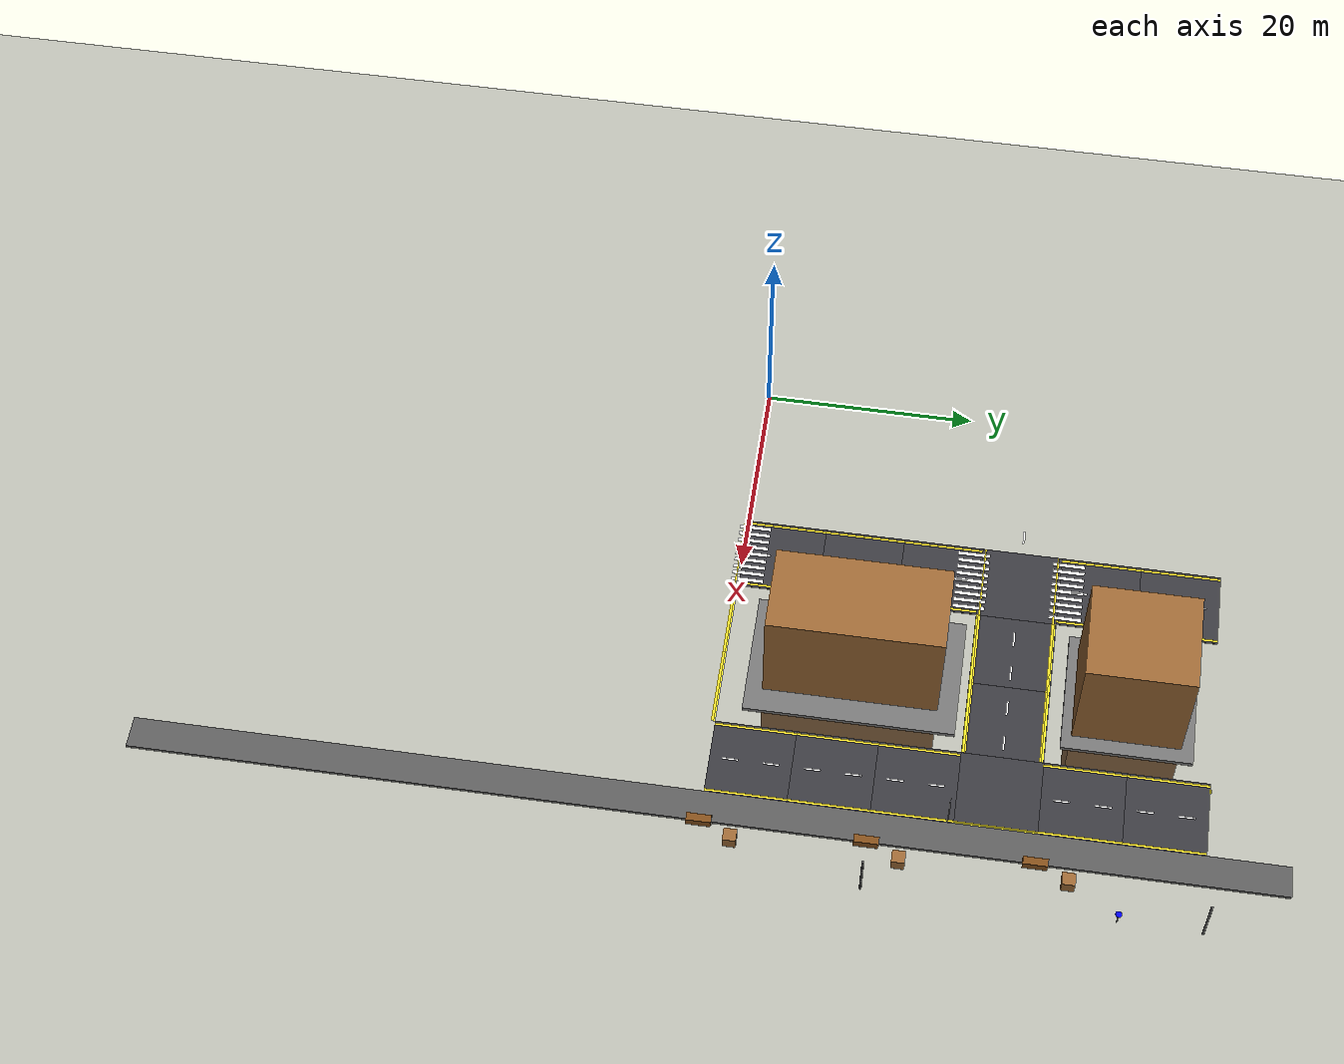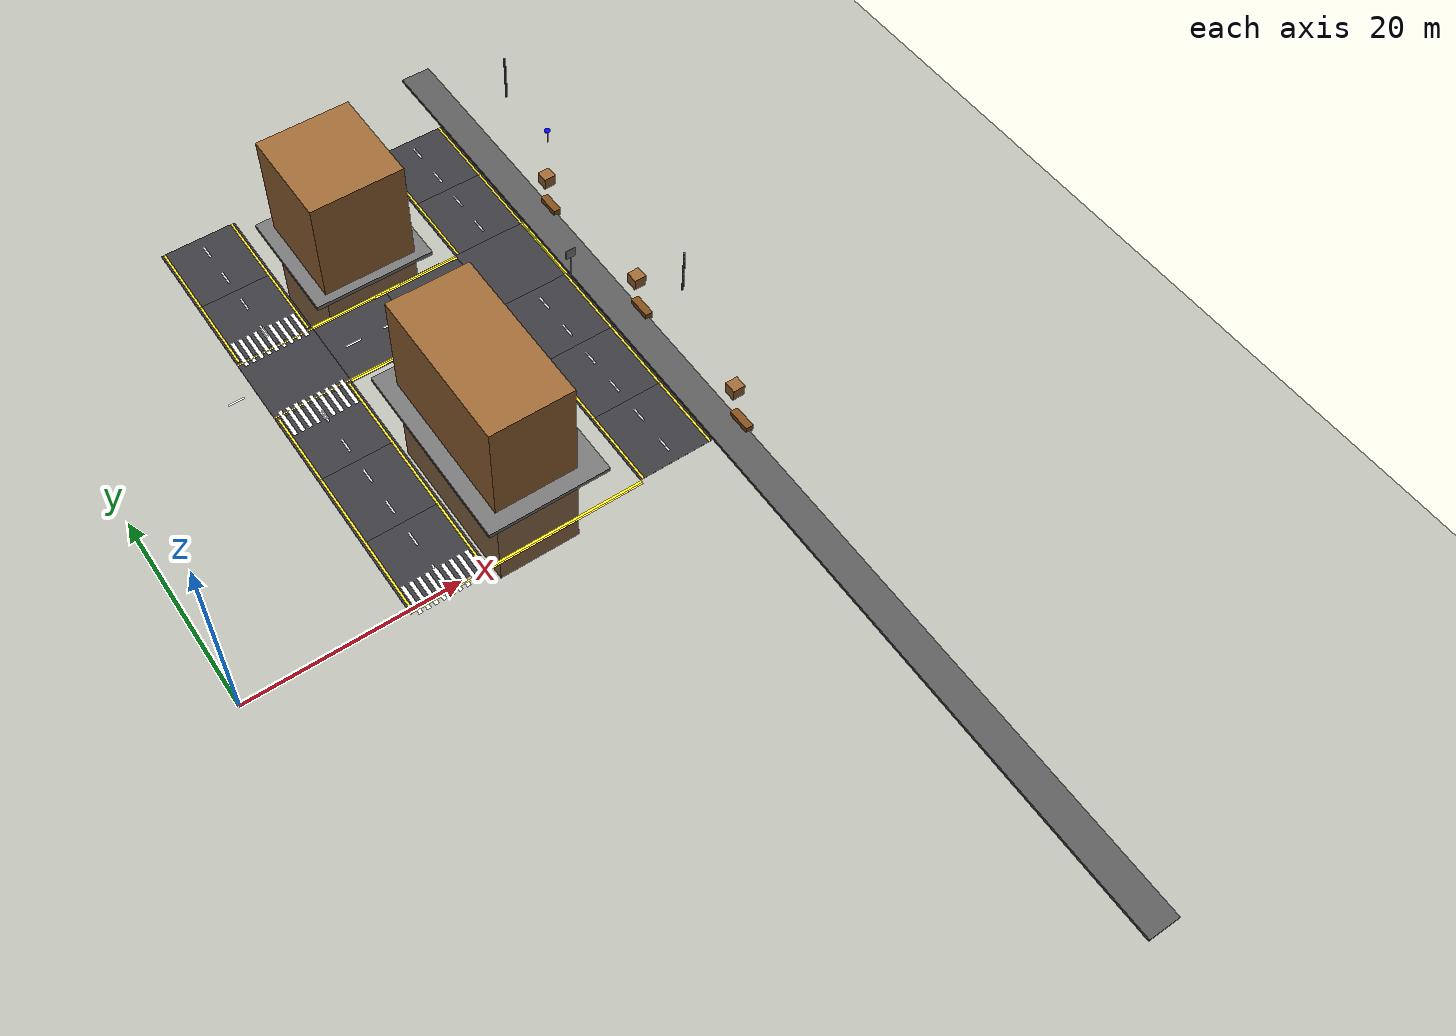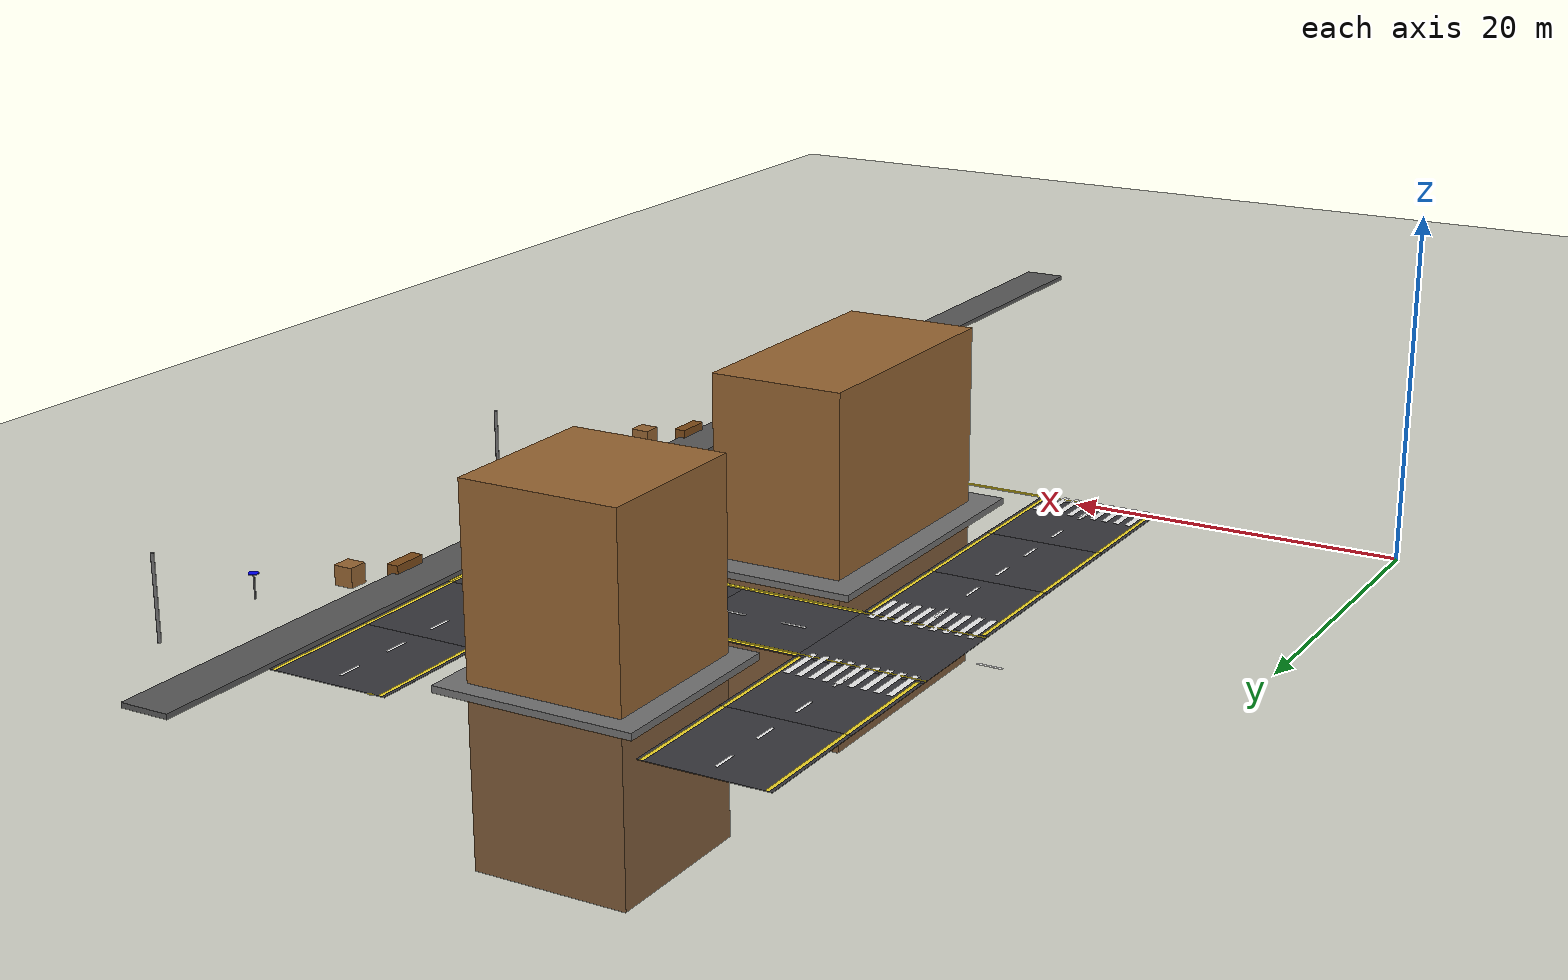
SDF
<sdf version="1.7">
 <world name="compact_city">
  <model name="ground_plane">
   <static>1</static>
   <pose>0 0 0.01 0 -0 0</pose>
   <link name="link">
    <collision name="collision">
     <geometry><plane><normal>0 0 1</normal><size>200 200</size></plane></geometry>
    </collision>
    <visual name="visual">
     <geometry><plane><normal>0 0 1</normal><size>200 200</size></plane></geometry>
     <material>
      <ambient>0.2 0.2 0.2 1</ambient>
      <diffuse>0.25 0.25 0.25 1</diffuse>
      <specular>0.1 0.1 0.1 1</specular>
     </material>
    </visual>
   </link>
  </model>
  <model name="road_tile_15">
   <static>1</static>
   <pose>18.75 41.25 0.015 0 -0 1.5708</pose>
   <link name="link">
    <collision name="collision"><geometry><box><size>7.5 7.5 0.03</size></box></geometry></collision>
    <visual name="visual">
     <geometry><box><size>7.5 7.5 0.03</size></box></geometry>
     <material>
      <ambient>0.18 0.18 0.2 1</ambient>
      <diffuse>0.22 0.22 0.24 1</diffuse>
      <specular>0.1 0.1 0.1 1</specular>
     </material>
    </visual>
   </link>
  </model>
  <model name="road_tile_16">
   <static>1</static>
   <pose>41.25 41.25 0.015 0 -0 1.5708</pose>
   <link name="link">
    <collision name="collision"><geometry><box><size>7.5 7.5 0.03</size></box></geometry></collision>
    <visual name="visual">
     <geometry><box><size>7.5 7.5 0.03</size></box></geometry>
     <material>
      <ambient>0.18 0.18 0.2 1</ambient>
      <diffuse>0.22 0.22 0.24 1</diffuse>
      <specular>0.1 0.1 0.1 1</specular>
     </material>
    </visual>
   </link>
  </model>
  <model name="road_tile_19">
   <static>1</static>
   <pose>18.75 33.75 0.015 0 -0 1.5708</pose>
   <link name="link">
    <collision name="collision"><geometry><box><size>7.5 7.5 0.03</size></box></geometry></collision>
    <visual name="visual">
     <geometry><box><size>7.5 7.5 0.03</size></box></geometry>
     <material>
      <ambient>0.18 0.18 0.2 1</ambient>
      <diffuse>0.22 0.22 0.24 1</diffuse>
      <specular>0.1 0.1 0.1 1</specular>
     </material>
    </visual>
   </link>
  </model>
  <model name="road_tile_20">
   <static>1</static>
   <pose>41.25 33.75 0.015 0 -0 1.5708</pose>
   <link name="link">
    <collision name="collision"><geometry><box><size>7.5 7.5 0.03</size></box></geometry></collision>
    <visual name="visual">
     <geometry><box><size>7.5 7.5 0.03</size></box></geometry>
     <material>
      <ambient>0.18 0.18 0.2 1</ambient>
      <diffuse>0.22 0.22 0.24 1</diffuse>
      <specular>0.1 0.1 0.1 1</specular>
     </material>
    </visual>
   </link>
  </model>
  <model name="road_tile_29">
   <static>1</static>
   <pose>18.75 26.25 0.015 0 -0 0</pose>
   <link name="link">
    <collision name="collision"><geometry><box><size>7.5 7.5 0.03</size></box></geometry></collision>
    <visual name="visual">
     <geometry><box><size>7.5 7.5 0.03</size></box></geometry>
     <material>
      <ambient>0.18 0.18 0.2 1</ambient>
      <diffuse>0.22 0.22 0.24 1</diffuse>
      <specular>0.1 0.1 0.1 1</specular>
     </material>
    </visual>
   </link>
  </model>
  <model name="road_tile_30">
   <static>1</static>
   <pose>26.25 26.25 0.015 0 -0 0</pose>
   <link name="link">
    <collision name="collision"><geometry><box><size>7.5 7.5 0.03</size></box></geometry></collision>
    <visual name="visual">
     <geometry><box><size>7.5 7.5 0.03</size></box></geometry>
     <material>
      <ambient>0.18 0.18 0.2 1</ambient>
      <diffuse>0.22 0.22 0.24 1</diffuse>
      <specular>0.1 0.1 0.1 1</specular>
     </material>
    </visual>
   </link>
  </model>
  <model name="road_tile_31">
   <static>1</static>
   <pose>33.75 26.25 0.015 0 -0 0</pose>
   <link name="link">
    <collision name="collision"><geometry><box><size>7.5 7.5 0.03</size></box></geometry></collision>
    <visual name="visual">
     <geometry><box><size>7.5 7.5 0.03</size></box></geometry>
     <material>
      <ambient>0.18 0.18 0.2 1</ambient>
      <diffuse>0.22 0.22 0.24 1</diffuse>
      <specular>0.1 0.1 0.1 1</specular>
     </material>
    </visual>
   </link>
  </model>
  <model name="road_tile_32">
   <static>1</static>
   <pose>41.25 26.25 0.015 0 -0 0</pose>
   <link name="link">
    <collision name="collision"><geometry><box><size>7.5 7.5 0.03</size></box></geometry></collision>
    <visual name="visual">
     <geometry><box><size>7.5 7.5 0.03</size></box></geometry>
     <material>
      <ambient>0.18 0.18 0.2 1</ambient>
      <diffuse>0.22 0.22 0.24 1</diffuse>
      <specular>0.1 0.1 0.1 1</specular>
     </material>
    </visual>
   </link>
  </model>
  <model name="road_tile_35">
   <static>1</static>
   <pose>18.75 18.75 0.015 0 -0 1.5708</pose>
   <link name="link">
    <collision name="collision"><geometry><box><size>7.5 7.5 0.03</size></box></geometry></collision>
    <visual name="visual">
     <geometry><box><size>7.5 7.5 0.03</size></box></geometry>
     <material>
      <ambient>0.18 0.18 0.2 1</ambient>
      <diffuse>0.22 0.22 0.24 1</diffuse>
      <specular>0.1 0.1 0.1 1</specular>
     </material>
    </visual>
   </link>
  </model>
  <model name="road_tile_36">
   <static>1</static>
   <pose>41.25 18.75 0.015 0 -0 1.5708</pose>
   <link name="link">
    <collision name="collision"><geometry><box><size>7.5 7.5 0.03</size></box></geometry></collision>
    <visual name="visual">
     <geometry><box><size>7.5 7.5 0.03</size></box></geometry>
     <material>
      <ambient>0.18 0.18 0.2 1</ambient>
      <diffuse>0.22 0.22 0.24 1</diffuse>
      <specular>0.1 0.1 0.1 1</specular>
     </material>
    </visual>
   </link>
  </model>
  <model name="road_tile_39">
   <static>1</static>
   <pose>18.75 11.25 0.015 0 -0 1.5708</pose>
   <link name="link">
    <collision name="collision"><geometry><box><size>7.5 7.5 0.03</size></box></geometry></collision>
    <visual name="visual">
     <geometry><box><size>7.5 7.5 0.03</size></box></geometry>
     <material>
      <ambient>0.18 0.18 0.2 1</ambient>
      <diffuse>0.22 0.22 0.24 1</diffuse>
      <specular>0.1 0.1 0.1 1</specular>
     </material>
    </visual>
   </link>
  </model>
  <model name="road_tile_40">
   <static>1</static>
   <pose>41.25 11.25 0.015 0 -0 1.5708</pose>
   <link name="link">
    <collision name="collision"><geometry><box><size>7.5 7.5 0.03</size></box></geometry></collision>
    <visual name="visual">
     <geometry><box><size>7.5 7.5 0.03</size></box></geometry>
     <material>
      <ambient>0.18 0.18 0.2 1</ambient>
      <diffuse>0.22 0.22 0.24 1</diffuse>
      <specular>0.1 0.1 0.1 1</specular>
     </material>
    </visual>
   </link>
  </model>
  <model name="road_tile_43">
   <static>1</static>
   <pose>18.75 3.75 0.015 0 -0 1.5708</pose>
   <link name="link">
    <collision name="collision"><geometry><box><size>7.5 7.5 0.03</size></box></geometry></collision>
    <visual name="visual">
     <geometry><box><size>7.5 7.5 0.03</size></box></geometry>
     <material>
      <ambient>0.18 0.18 0.2 1</ambient>
      <diffuse>0.22 0.22 0.24 1</diffuse>
      <specular>0.1 0.1 0.1 1</specular>
     </material>
    </visual>
   </link>
  </model>
  <model name="road_tile_44">
   <static>1</static>
   <pose>41.25 3.75 0.015 0 -0 1.5708</pose>
   <link name="link">
    <collision name="collision"><geometry><box><size>7.5 7.5 0.03</size></box></geometry></collision>
    <visual name="visual">
     <geometry><box><size>7.5 7.5 0.03</size></box></geometry>
     <material>
      <ambient>0.18 0.18 0.2 1</ambient>
      <diffuse>0.22 0.22 0.24 1</diffuse>
      <specular>0.1 0.1 0.1 1</specular>
     </material>
    </visual>
   </link>
  </model>
  <model name="sidewalk_east">
   <static>1</static>
   <pose>46.5 0 0.15 0 -0 0</pose>
   <link name="link">
    <collision name="collision"><geometry><box><size>3 105 0.3</size></box></geometry></collision>
    <visual name="visual">
     <geometry><box><size>3 105 0.3</size></box></geometry>
     <material>
      <ambient>0.3 0.3 0.3 1</ambient>
      <diffuse>0.35 0.35 0.35 1</diffuse>
      <specular>0.1 0.1 0.1 1</specular>
     </material>
    </visual>
   </link>
  </model>
  <model name="sidewalk_area_top_right">
   <static>1</static>
   <pose>29.8659 37.3103 0.2 0 -0 0</pose>
   <link name="link">
    <collision name="collision"><geometry><box><size>12 12 0.4</size></box></geometry></collision>
    <visual name="visual">
     <geometry><box><size>12 12 0.4</size></box></geometry>
     <material>
      <ambient>0.4 0.4 0.4 1</ambient>
      <diffuse>0.45 0.45 0.45 1</diffuse>
      <specular>0.2 0.2 0.2 1</specular>
     </material>
    </visual>
   </link>
  </model>
  <model name="sidewalk_area_mid_right">
   <static>1</static>
   <pose>29.9619 11.969 0.2 0 -0 0</pose>
   <link name="link">
    <collision name="collision"><geometry><box><size>12 19.5 0.4</size></box></geometry></collision>
    <visual name="visual">
     <geometry><box><size>12 19.5 0.4</size></box></geometry>
     <material>
      <ambient>0.4 0.4 0.4 1</ambient>
      <diffuse>0.45 0.45 0.45 1</diffuse>
      <specular>0.2 0.2 0.2 1</specular>
     </material>
    </visual>
   </link>
  </model>
  <model name="el_219">
   <static>1</static>
   <pose>15.3 3.75 0.038 0 -0 1.5708</pose>
   <link name="link">
    <visual name="v">
     <geometry><box><size>7.5 0.225 0.002</size></box></geometry>
     <material><ambient>0.9 0.8 0.1 1</ambient><diffuse>0.95 0.85 0.15 1</diffuse></material>
    </visual>
   </link>
  </model>
  <model name="el_220">
   <static>1</static>
   <pose>22.2 3.75 0.038 0 -0 1.5708</pose>
   <link name="link">
    <visual name="v">
     <geometry><box><size>7.5 0.225 0.002</size></box></geometry>
     <material><ambient>0.9 0.8 0.1 1</ambient><diffuse>0.95 0.85 0.15 1</diffuse></material>
    </visual>
   </link>
  </model>
  <model name="el_221">
   <static>1</static>
   <pose>15.3 11.25 0.038 0 -0 1.5708</pose>
   <link name="link">
    <visual name="v">
     <geometry><box><size>7.5 0.225 0.002</size></box></geometry>
     <material><ambient>0.9 0.8 0.1 1</ambient><diffuse>0.95 0.85 0.15 1</diffuse></material>
    </visual>
   </link>
  </model>
  <model name="el_222">
   <static>1</static>
   <pose>22.2 11.25 0.038 0 -0 1.5708</pose>
   <link name="link">
    <visual name="v">
     <geometry><box><size>7.5 0.225 0.002</size></box></geometry>
     <material><ambient>0.9 0.8 0.1 1</ambient><diffuse>0.95 0.85 0.15 1</diffuse></material>
    </visual>
   </link>
  </model>
  <model name="el_223">
   <static>1</static>
   <pose>15.3 18.75 0.038 0 -0 1.5708</pose>
   <link name="link">
    <visual name="v">
     <geometry><box><size>7.5 0.225 0.002</size></box></geometry>
     <material><ambient>0.9 0.8 0.1 1</ambient><diffuse>0.95 0.85 0.15 1</diffuse></material>
    </visual>
   </link>
  </model>
  <model name="el_224">
   <static>1</static>
   <pose>22.2 18.75 0.038 0 -0 1.5708</pose>
   <link name="link">
    <visual name="v">
     <geometry><box><size>7.5 0.225 0.002</size></box></geometry>
     <material><ambient>0.9 0.8 0.1 1</ambient><diffuse>0.95 0.85 0.15 1</diffuse></material>
    </visual>
   </link>
  </model>
  <model name="el_225">
   <static>1</static>
   <pose>15.3 33.75 0.038 0 -0 1.5708</pose>
   <link name="link">
    <visual name="v">
     <geometry><box><size>7.5 0.225 0.002</size></box></geometry>
     <material><ambient>0.9 0.8 0.1 1</ambient><diffuse>0.95 0.85 0.15 1</diffuse></material>
    </visual>
   </link>
  </model>
  <model name="el_226">
   <static>1</static>
   <pose>22.2 33.75 0.038 0 -0 1.5708</pose>
   <link name="link">
    <visual name="v">
     <geometry><box><size>7.5 0.225 0.002</size></box></geometry>
     <material><ambient>0.9 0.8 0.1 1</ambient><diffuse>0.95 0.85 0.15 1</diffuse></material>
    </visual>
   </link>
  </model>
  <model name="el_227">
   <static>1</static>
   <pose>15.3 41.25 0.038 0 -0 1.5708</pose>
   <link name="link">
    <visual name="v">
     <geometry><box><size>7.5 0.225 0.002</size></box></geometry>
     <material><ambient>0.9 0.8 0.1 1</ambient><diffuse>0.95 0.85 0.15 1</diffuse></material>
    </visual>
   </link>
  </model>
  <model name="el_228">
   <static>1</static>
   <pose>22.2 41.25 0.038 0 -0 1.5708</pose>
   <link name="link">
    <visual name="v">
     <geometry><box><size>7.5 0.225 0.002</size></box></geometry>
     <material><ambient>0.9 0.8 0.1 1</ambient><diffuse>0.95 0.85 0.15 1</diffuse></material>
    </visual>
   </link>
  </model>
  <model name="el_232">
   <static>1</static>
   <pose>26.25 -0.3 0.038 0 -0 0</pose>
   <link name="link">
    <visual name="v">
     <geometry><box><size>7.5 0.225 0.002</size></box></geometry>
     <material><ambient>0.9 0.8 0.1 1</ambient><diffuse>0.95 0.85 0.15 1</diffuse></material>
    </visual>
   </link>
  </model>
  <model name="el_233">
   <static>1</static>
   <pose>26.25 22.8 0.038 0 -0 0</pose>
   <link name="link">
    <visual name="v">
     <geometry><box><size>7.5 0.225 0.002</size></box></geometry>
     <material><ambient>0.9 0.8 0.1 1</ambient><diffuse>0.95 0.85 0.15 1</diffuse></material>
    </visual>
   </link>
  </model>
  <model name="el_234">
   <static>1</static>
   <pose>26.25 29.7 0.038 0 -0 0</pose>
   <link name="link">
    <visual name="v">
     <geometry><box><size>7.5 0.225 0.002</size></box></geometry>
     <material><ambient>0.9 0.8 0.1 1</ambient><diffuse>0.95 0.85 0.15 1</diffuse></material>
    </visual>
   </link>
  </model>
  <model name="el_240">
   <static>1</static>
   <pose>33.75 -0.3 0.038 0 -0 0</pose>
   <link name="link">
    <visual name="v">
     <geometry><box><size>7.5 0.225 0.002</size></box></geometry>
     <material><ambient>0.9 0.8 0.1 1</ambient><diffuse>0.95 0.85 0.15 1</diffuse></material>
    </visual>
   </link>
  </model>
  <model name="el_241">
   <static>1</static>
   <pose>33.75 22.8 0.038 0 -0 0</pose>
   <link name="link">
    <visual name="v">
     <geometry><box><size>7.5 0.225 0.002</size></box></geometry>
     <material><ambient>0.9 0.8 0.1 1</ambient><diffuse>0.95 0.85 0.15 1</diffuse></material>
    </visual>
   </link>
  </model>
  <model name="el_242">
   <static>1</static>
   <pose>33.75 29.7 0.038 0 -0 0</pose>
   <link name="link">
    <visual name="v">
     <geometry><box><size>7.5 0.225 0.002</size></box></geometry>
     <material><ambient>0.9 0.8 0.1 1</ambient><diffuse>0.95 0.85 0.15 1</diffuse></material>
    </visual>
   </link>
  </model>
  <model name="el_251">
   <static>1</static>
   <pose>37.8 3.75 0.038 0 -0 1.5708</pose>
   <link name="link">
    <visual name="v">
     <geometry><box><size>7.5 0.225 0.002</size></box></geometry>
     <material><ambient>0.9 0.8 0.1 1</ambient><diffuse>0.95 0.85 0.15 1</diffuse></material>
    </visual>
   </link>
  </model>
  <model name="el_252">
   <static>1</static>
   <pose>44.7 3.75 0.038 0 -0 1.5708</pose>
   <link name="link">
    <visual name="v">
     <geometry><box><size>7.5 0.225 0.002</size></box></geometry>
     <material><ambient>0.9 0.8 0.1 1</ambient><diffuse>0.95 0.85 0.15 1</diffuse></material>
    </visual>
   </link>
  </model>
  <model name="el_253">
   <static>1</static>
   <pose>37.8 11.25 0.038 0 -0 1.5708</pose>
   <link name="link">
    <visual name="v">
     <geometry><box><size>7.5 0.225 0.002</size></box></geometry>
     <material><ambient>0.9 0.8 0.1 1</ambient><diffuse>0.95 0.85 0.15 1</diffuse></material>
    </visual>
   </link>
  </model>
  <model name="el_254">
   <static>1</static>
   <pose>44.7 11.25 0.038 0 -0 1.5708</pose>
   <link name="link">
    <visual name="v">
     <geometry><box><size>7.5 0.225 0.002</size></box></geometry>
     <material><ambient>0.9 0.8 0.1 1</ambient><diffuse>0.95 0.85 0.15 1</diffuse></material>
    </visual>
   </link>
  </model>
  <model name="el_255">
   <static>1</static>
   <pose>37.8 18.75 0.038 0 -0 1.5708</pose>
   <link name="link">
    <visual name="v">
     <geometry><box><size>7.5 0.225 0.002</size></box></geometry>
     <material><ambient>0.9 0.8 0.1 1</ambient><diffuse>0.95 0.85 0.15 1</diffuse></material>
    </visual>
   </link>
  </model>
  <model name="el_256">
   <static>1</static>
   <pose>44.7 18.75 0.038 0 -0 1.5708</pose>
   <link name="link">
    <visual name="v">
     <geometry><box><size>7.5 0.225 0.002</size></box></geometry>
     <material><ambient>0.9 0.8 0.1 1</ambient><diffuse>0.95 0.85 0.15 1</diffuse></material>
    </visual>
   </link>
  </model>
  <model name="el_257">
   <static>1</static>
   <pose>37.8 33.75 0.038 0 -0 1.5708</pose>
   <link name="link">
    <visual name="v">
     <geometry><box><size>7.5 0.225 0.002</size></box></geometry>
     <material><ambient>0.9 0.8 0.1 1</ambient><diffuse>0.95 0.85 0.15 1</diffuse></material>
    </visual>
   </link>
  </model>
  <model name="el_258">
   <static>1</static>
   <pose>44.7 33.75 0.038 0 -0 1.5708</pose>
   <link name="link">
    <visual name="v">
     <geometry><box><size>7.5 0.225 0.002</size></box></geometry>
     <material><ambient>0.9 0.8 0.1 1</ambient><diffuse>0.95 0.85 0.15 1</diffuse></material>
    </visual>
   </link>
  </model>
  <model name="el_259">
   <static>1</static>
   <pose>37.8 41.25 0.038 0 -0 1.5708</pose>
   <link name="link">
    <visual name="v">
     <geometry><box><size>7.5 0.225 0.002</size></box></geometry>
     <material><ambient>0.9 0.8 0.1 1</ambient><diffuse>0.95 0.85 0.15 1</diffuse></material>
    </visual>
   </link>
  </model>
  <model name="el_260">
   <static>1</static>
   <pose>44.7 41.25 0.038 0 -0 1.5708</pose>
   <link name="link">
    <visual name="v">
     <geometry><box><size>7.5 0.225 0.002</size></box></geometry>
     <material><ambient>0.9 0.8 0.1 1</ambient><diffuse>0.95 0.85 0.15 1</diffuse></material>
    </visual>
   </link>
  </model>
  <model name="ld_39">
   <static>1</static>
   <pose>18.75 1.875 0.038 0 -0 1.5708</pose>
   <link name="link">
    <visual name="v">
     <geometry><box><size>1.5 0.18 0.002</size></box></geometry>
     <material><ambient>1 1 1 1</ambient><diffuse>0.95 0.95 0.95 1</diffuse></material>
    </visual>
   </link>
  </model>
  <model name="ld_40">
   <static>1</static>
   <pose>18.75 5.625 0.038 0 -0 1.5708</pose>
   <link name="link">
    <visual name="v">
     <geometry><box><size>1.5 0.18 0.002</size></box></geometry>
     <material><ambient>1 1 1 1</ambient><diffuse>0.95 0.95 0.95 1</diffuse></material>
    </visual>
   </link>
  </model>
  <model name="ld_41">
   <static>1</static>
   <pose>18.75 9.375 0.038 0 -0 1.5708</pose>
   <link name="link">
    <visual name="v">
     <geometry><box><size>1.5 0.18 0.002</size></box></geometry>
     <material><ambient>1 1 1 1</ambient><diffuse>0.95 0.95 0.95 1</diffuse></material>
    </visual>
   </link>
  </model>
  <model name="ld_42">
   <static>1</static>
   <pose>18.75 13.125 0.038 0 -0 1.5708</pose>
   <link name="link">
    <visual name="v">
     <geometry><box><size>1.5 0.18 0.002</size></box></geometry>
     <material><ambient>1 1 1 1</ambient><diffuse>0.95 0.95 0.95 1</diffuse></material>
    </visual>
   </link>
  </model>
  <model name="ld_43">
   <static>1</static>
   <pose>18.75 16.875 0.038 0 -0 1.5708</pose>
   <link name="link">
    <visual name="v">
     <geometry><box><size>1.5 0.18 0.002</size></box></geometry>
     <material><ambient>1 1 1 1</ambient><diffuse>0.95 0.95 0.95 1</diffuse></material>
    </visual>
   </link>
  </model>
  <model name="ld_44">
   <static>1</static>
   <pose>18.75 20.625 0.038 0 -0 1.5708</pose>
   <link name="link">
    <visual name="v">
     <geometry><box><size>1.5 0.18 0.002</size></box></geometry>
     <material><ambient>1 1 1 1</ambient><diffuse>0.95 0.95 0.95 1</diffuse></material>
    </visual>
   </link>
  </model>
  <model name="ld_45">
   <static>1</static>
   <pose>18.75 31.875 0.038 0 -0 1.5708</pose>
   <link name="link">
    <visual name="v">
     <geometry><box><size>1.5 0.18 0.002</size></box></geometry>
     <material><ambient>1 1 1 1</ambient><diffuse>0.95 0.95 0.95 1</diffuse></material>
    </visual>
   </link>
  </model>
  <model name="ld_46">
   <static>1</static>
   <pose>18.75 35.625 0.038 0 -0 1.5708</pose>
   <link name="link">
    <visual name="v">
     <geometry><box><size>1.5 0.18 0.002</size></box></geometry>
     <material><ambient>1 1 1 1</ambient><diffuse>0.95 0.95 0.95 1</diffuse></material>
    </visual>
   </link>
  </model>
  <model name="ld_47">
   <static>1</static>
   <pose>18.75 39.375 0.038 0 -0 1.5708</pose>
   <link name="link">
    <visual name="v">
     <geometry><box><size>1.5 0.18 0.002</size></box></geometry>
     <material><ambient>1 1 1 1</ambient><diffuse>0.95 0.95 0.95 1</diffuse></material>
    </visual>
   </link>
  </model>
  <model name="ld_48">
   <static>1</static>
   <pose>18.75 43.125 0.038 0 -0 1.5708</pose>
   <link name="link">
    <visual name="v">
     <geometry><box><size>1.5 0.18 0.002</size></box></geometry>
     <material><ambient>1 1 1 1</ambient><diffuse>0.95 0.95 0.95 1</diffuse></material>
    </visual>
   </link>
  </model>
  <model name="ld_55">
   <static>1</static>
   <pose>41.25 1.875 0.038 0 -0 1.5708</pose>
   <link name="link">
    <visual name="v">
     <geometry><box><size>1.5 0.18 0.002</size></box></geometry>
     <material><ambient>1 1 1 1</ambient><diffuse>0.95 0.95 0.95 1</diffuse></material>
    </visual>
   </link>
  </model>
  <model name="ld_56">
   <static>1</static>
   <pose>41.25 5.625 0.038 0 -0 1.5708</pose>
   <link name="link">
    <visual name="v">
     <geometry><box><size>1.5 0.18 0.002</size></box></geometry>
     <material><ambient>1 1 1 1</ambient><diffuse>0.95 0.95 0.95 1</diffuse></material>
    </visual>
   </link>
  </model>
  <model name="ld_57">
   <static>1</static>
   <pose>41.25 9.375 0.038 0 -0 1.5708</pose>
   <link name="link">
    <visual name="v">
     <geometry><box><size>1.5 0.18 0.002</size></box></geometry>
     <material><ambient>1 1 1 1</ambient><diffuse>0.95 0.95 0.95 1</diffuse></material>
    </visual>
   </link>
  </model>
  <model name="ld_58">
   <static>1</static>
   <pose>41.25 13.125 0.038 0 -0 1.5708</pose>
   <link name="link">
    <visual name="v">
     <geometry><box><size>1.5 0.18 0.002</size></box></geometry>
     <material><ambient>1 1 1 1</ambient><diffuse>0.95 0.95 0.95 1</diffuse></material>
    </visual>
   </link>
  </model>
  <model name="ld_59">
   <static>1</static>
   <pose>41.25 16.875 0.038 0 -0 1.5708</pose>
   <link name="link">
    <visual name="v">
     <geometry><box><size>1.5 0.18 0.002</size></box></geometry>
     <material><ambient>1 1 1 1</ambient><diffuse>0.95 0.95 0.95 1</diffuse></material>
    </visual>
   </link>
  </model>
  <model name="ld_60">
   <static>1</static>
   <pose>41.25 20.625 0.038 0 -0 1.5708</pose>
   <link name="link">
    <visual name="v">
     <geometry><box><size>1.5 0.18 0.002</size></box></geometry>
     <material><ambient>1 1 1 1</ambient><diffuse>0.95 0.95 0.95 1</diffuse></material>
    </visual>
   </link>
  </model>
  <model name="ld_61">
   <static>1</static>
   <pose>41.25 31.875 0.038 0 -0 1.5708</pose>
   <link name="link">
    <visual name="v">
     <geometry><box><size>1.5 0.18 0.002</size></box></geometry>
     <material><ambient>1 1 1 1</ambient><diffuse>0.95 0.95 0.95 1</diffuse></material>
    </visual>
   </link>
  </model>
  <model name="ld_62">
   <static>1</static>
   <pose>41.25 35.625 0.038 0 -0 1.5708</pose>
   <link name="link">
    <visual name="v">
     <geometry><box><size>1.5 0.18 0.002</size></box></geometry>
     <material><ambient>1 1 1 1</ambient><diffuse>0.95 0.95 0.95 1</diffuse></material>
    </visual>
   </link>
  </model>
  <model name="ld_63">
   <static>1</static>
   <pose>41.25 39.375 0.038 0 -0 1.5708</pose>
   <link name="link">
    <visual name="v">
     <geometry><box><size>1.5 0.18 0.002</size></box></geometry>
     <material><ambient>1 1 1 1</ambient><diffuse>0.95 0.95 0.95 1</diffuse></material>
    </visual>
   </link>
  </model>
  <model name="ld_64">
   <static>1</static>
   <pose>41.25 43.125 0.038 0 -0 1.5708</pose>
   <link name="link">
    <visual name="v">
     <geometry><box><size>1.5 0.18 0.002</size></box></geometry>
     <material><ambient>1 1 1 1</ambient><diffuse>0.95 0.95 0.95 1</diffuse></material>
    </visual>
   </link>
  </model>
  <model name="ld_96">
   <static>1</static>
   <pose>13.125 26.25 0.038 0 -0 0</pose>
   <link name="link">
    <visual name="v">
     <geometry><box><size>1.5 0.18 0.002</size></box></geometry>
     <material><ambient>1 1 1 1</ambient><diffuse>0.95 0.95 0.95 1</diffuse></material>
    </visual>
   </link>
  </model>
  <model name="ld_97">
   <static>1</static>
   <pose>24.75 26.25 0.038 0 -0 0</pose>
   <link name="link">
    <visual name="v">
     <geometry><box><size>1.5 0.18 0.002</size></box></geometry>
     <material><ambient>1 1 1 1</ambient><diffuse>0.95 0.95 0.95 1</diffuse></material>
    </visual>
   </link>
  </model>
  <model name="ld_98">
   <static>1</static>
   <pose>28.5 26.25 0.038 0 -0 0</pose>
   <link name="link">
    <visual name="v">
     <geometry><box><size>1.5 0.18 0.002</size></box></geometry>
     <material><ambient>1 1 1 1</ambient><diffuse>0.95 0.95 0.95 1</diffuse></material>
    </visual>
   </link>
  </model>
  <model name="ld_99">
   <static>1</static>
   <pose>32.25 26.25 0.038 0 -0 0</pose>
   <link name="link">
    <visual name="v">
     <geometry><box><size>1.5 0.18 0.002</size></box></geometry>
     <material><ambient>1 1 1 1</ambient><diffuse>0.95 0.95 0.95 1</diffuse></material>
    </visual>
   </link>
  </model>
  <model name="ld_100">
   <static>1</static>
   <pose>36 26.25 0.038 0 -0 0</pose>
   <link name="link">
    <visual name="v">
     <geometry><box><size>1.5 0.18 0.002</size></box></geometry>
     <material><ambient>1 1 1 1</ambient><diffuse>0.95 0.95 0.95 1</diffuse></material>
    </visual>
   </link>
  </model>
  <model name="ie_320">
   <static>1</static>
   <pose>18.75 -0.3 0.038 0 -0 0</pose>
   <link name="link">
    <visual name="v">
     <geometry><box><size>7.5 0.15 0.002</size></box></geometry>
     <material><ambient>0.9 0.8 0.1 1</ambient><diffuse>0.95 0.85 0.15 1</diffuse></material>
    </visual>
   </link>
  </model>
  <model name="ie_328">
   <static>1</static>
   <pose>18.75 22.8 0.038 0 -0 0</pose>
   <link name="link">
    <visual name="v">
     <geometry><box><size>7.5 0.15 0.002</size></box></geometry>
     <material><ambient>0.9 0.8 0.1 1</ambient><diffuse>0.95 0.85 0.15 1</diffuse></material>
    </visual>
   </link>
  </model>
  <model name="ie_329">
   <static>1</static>
   <pose>18.75 29.7 0.038 0 -0 0</pose>
   <link name="link">
    <visual name="v">
     <geometry><box><size>7.5 0.15 0.002</size></box></geometry>
     <material><ambient>0.9 0.8 0.1 1</ambient><diffuse>0.95 0.85 0.15 1</diffuse></material>
    </visual>
   </link>
  </model>
  <model name="ie_350">
   <static>1</static>
   <pose>44.7 26.25 0.038 0 -0 1.5708</pose>
   <link name="link">
    <visual name="v">
     <geometry><box><size>7.5 0.15 0.002</size></box></geometry>
     <material><ambient>0.9 0.8 0.1 1</ambient><diffuse>0.95 0.85 0.15 1</diffuse></material>
    </visual>
   </link>
  </model>
  <model name="ai_450">
   <static>1</static>
   <pose>38.2495 45.0246 0.038 0 -0 1.6035</pose>
   <link name="link">
    <visual name="v">
     <geometry><box><size>0.06 0.225 0.002</size></box></geometry>
     <material><ambient>0.9 0.8 0.1 1</ambient><diffuse>0.95 0.85 0.15 1</diffuse></material>
    </visual>
   </link>
  </model>
  <model name="ai_451">
   <static>1</static>
   <pose>38.2464 45.0735 0.038 0 -0 1.669</pose>
   <link name="link">
    <visual name="v">
     <geometry><box><size>0.06 0.225 0.002</size></box></geometry>
     <material><ambient>0.9 0.8 0.1 1</ambient><diffuse>0.95 0.85 0.15 1</diffuse></material>
    </visual>
   </link>
  </model>
  <model name="ai_452">
   <static>1</static>
   <pose>38.24 45.1221 0.038 0 -0 1.7344</pose>
   <link name="link">
    <visual name="v">
     <geometry><box><size>0.06 0.225 0.002</size></box></geometry>
     <material><ambient>0.9 0.8 0.1 1</ambient><diffuse>0.95 0.85 0.15 1</diffuse></material>
    </visual>
   </link>
  </model>
  <model name="yolo_traffic_sign_no_entry_east_vertical">
   <static>1</static>
   <pose>44.9709 21.94 0 0 -0 -3.14159</pose>
   <link name="link">
    <collision name="pole_collision">
     <pose>0 0 1.35 0 -0 0</pose>
     <geometry><cylinder><radius>0.045</radius><length>2.7</length></cylinder></geometry>
    </collision>
    <visual name="pole_visual">
     <pose>0 0 1.35 0 -0 0</pose>
     <geometry><cylinder><radius>0.045</radius><length>2.7</length></cylinder></geometry>
     <material><ambient>0.45 0.45 0.45 1</ambient><diffuse>0.55 0.55 0.55 1</diffuse></material>
    </visual>
    <collision name="panel_collision">
     <pose>0 0 3.225 0 -0 0</pose>
     <geometry><box><size>1.05 0.045 1.05</size></box></geometry>
    </collision>
    <visual name="panel_back_visual">
     <pose>0 0 3.225 0 -0 0</pose>
     <geometry><box><size>1.05 0.045 1.05</size></box></geometry>
     <material><ambient>0.42 0.42 0.42 1</ambient><diffuse>0.5 0.5 0.5 1</diffuse></material>
    </visual>
    <visual name="panel_front_visual">
     <pose>0 -0.026 3.225 0 -0 0</pose>
     <geometry><box><size>1.05 0.006 1.05</size></box></geometry>
     <material>
      <script>
       <uri>file:///home/ranim/autoCar_ws/models/traffic_sign_assets/materials/scripts</uri>
       <uri>file:///home/ranim/autoCar_ws/models/traffic_sign_assets/materials/textures</uri>
       <name>TrafficSigns/NoEntry</name>
      </script>
     </material>
    </visual>
   </link>
  </model>
  <model name="bench_8">
   <static>1</static>
   <pose>48 30 0.4 0 0 -1.57</pose>
   <link name="link">
    <collision name="collision"><geometry><box><size>2.25 0.75 0.8</size></box></geometry></collision>
    <visual name="visual">
     <geometry><box><size>2.25 0.75 0.8</size></box></geometry>
     <material><ambient>0.5 0.3 0.1 1</ambient><diffuse>0.5 0.3 0.1 1</diffuse></material>
    </visual>
   </link>
  </model>
  <model name="bench_9">
   <static>1</static>
   <pose>48 15 0.4 0 0 -1.57</pose>
   <link name="link">
    <collision name="collision"><geometry><box><size>2.25 0.75 0.8</size></box></geometry></collision>
    <visual name="visual">
     <geometry><box><size>2.25 0.75 0.8</size></box></geometry>
     <material><ambient>0.5 0.3 0.1 1</ambient><diffuse>0.5 0.3 0.1 1</diffuse></material>
    </visual>
   </link>
  </model>
  <model name="bench_10">
   <static>1</static>
   <pose>48 0 0.4 0 0 -1.57</pose>
   <link name="link">
    <collision name="collision"><geometry><box><size>2.25 0.75 0.8</size></box></geometry></collision>
    <visual name="visual">
     <geometry><box><size>2.25 0.75 0.8</size></box></geometry>
     <material><ambient>0.5 0.3 0.1 1</ambient><diffuse>0.5 0.3 0.1 1</diffuse></material>
    </visual>
   </link>
  </model>
  <model name="sign_7">
   <static>1</static>
   <pose>52.5 37.5 1.5 0 0 -1.57</pose>
   <link name="link">
    <collision name="collision">
     <geometry><cylinder><radius>0.3</radius><length>0.05</length></cylinder></geometry>
    </collision>
    <visual name="visual">
     <geometry><cylinder><radius>0.3</radius><length>0.05</length></cylinder></geometry>
     <material><ambient>0 0 1 1</ambient><diffuse>0 0 1 1</diffuse></material>
    </visual>
    <collision name="pole_col">
     <pose>0 0 -0.75 0 -0 0</pose>
     <geometry><cylinder><radius>0.05</radius><length>1.5</length></cylinder></geometry>
    </collision>
    <visual name="pole">
     <pose>0 0 -0.75 0 -0 0</pose>
     <geometry><cylinder><radius>0.05</radius><length>1.5</length></cylinder></geometry>
     <material><ambient>0.5 0.5 0.5 1</ambient><diffuse>0.5 0.5 0.5 1</diffuse></material>
    </visual>
   </link>
  </model>
  <model name="pole_8">
   <static>1</static>
   <pose>52.5 45 2.5 0 -0 0</pose>
   <link name="link">
    <collision name="collision">
     <geometry><cylinder><radius>0.1</radius><length>5</length></cylinder></geometry>
    </collision>
    <visual name="visual">
     <geometry><cylinder><radius>0.1</radius><length>5</length></cylinder></geometry>
     <material><ambient>0.3 0.3 0.3 1</ambient><diffuse>0.4 0.4 0.4 1</diffuse></material>
    </visual>
   </link>
  </model>
  <model name="pole_9">
   <static>1</static>
   <pose>52.5 15 2.5 0 -0 0</pose>
   <link name="link">
    <collision name="collision">
     <geometry><cylinder><radius>0.1</radius><length>5</length></cylinder></geometry>
    </collision>
    <visual name="visual">
     <geometry><cylinder><radius>0.1</radius><length>5</length></cylinder></geometry>
     <material><ambient>0.3 0.3 0.3 1</ambient><diffuse>0.4 0.4 0.4 1</diffuse></material>
    </visual>
   </link>
  </model>
  <model name="box_5">
   <static>1</static>
   <pose>49.5 33 0.6 0 -0 0</pose>
   <link name="link">
    <collision name="collision"><geometry><box><size>1.2 1.2 1.2</size></box></geometry></collision>
    <visual name="visual">
     <geometry><box><size>1.2 1.2 1.2</size></box></geometry>
     <material><ambient>0.6 0.4 0.2 1</ambient><diffuse>0.6 0.4 0.2 1</diffuse></material>
    </visual>
   </link>
  </model>
  <model name="box_6">
   <static>1</static>
   <pose>49.5 18 0.6 0 -0 0</pose>
   <link name="link">
    <collision name="collision"><geometry><box><size>1.2 1.2 1.2</size></box></geometry></collision>
    <visual name="visual">
     <geometry><box><size>1.2 1.2 1.2</size></box></geometry>
     <material><ambient>0.6 0.4 0.2 1</ambient><diffuse>0.6 0.4 0.2 1</diffuse></material>
    </visual>
   </link>
  </model>
  <model name="box_7">
   <static>1</static>
   <pose>49.5 3 0.6 0 -0 0</pose>
   <link name="link">
    <collision name="collision"><geometry><box><size>1.2 1.2 1.2</size></box></geometry></collision>
    <visual name="visual">
     <geometry><box><size>1.2 1.2 1.2</size></box></geometry>
     <material><ambient>0.6 0.4 0.2 1</ambient><diffuse>0.6 0.4 0.2 1</diffuse></material>
    </visual>
   </link>
  </model>
  <model name="edge_h_11">
   <static>1</static>
   <pose>30 22.65 0.038 0 -0 0</pose>
   <link name="link">
    <visual name="visual">
     <geometry><box><size>15 0.225 0.002</size></box></geometry>
     <material><ambient>0.95 0.85 0.1 1</ambient><diffuse>1 0.9 0.15 1</diffuse></material>
    </visual>
   </link>
  </model>
  <model name="edge_h_12">
   <static>1</static>
   <pose>30 29.85 0.038 0 -0 0</pose>
   <link name="link">
    <visual name="visual">
     <geometry><box><size>15 0.225 0.002</size></box></geometry>
     <material><ambient>0.95 0.85 0.1 1</ambient><diffuse>1 0.9 0.15 1</diffuse></material>
    </visual>
   </link>
  </model>
  <model name="edge_h_18">
   <static>1</static>
   <pose>30 -0.15 0.038 0 -0 0</pose>
   <link name="link">
    <visual name="visual">
     <geometry><box><size>15 0.225 0.002</size></box></geometry>
     <material><ambient>0.95 0.85 0.1 1</ambient><diffuse>1 0.9 0.15 1</diffuse></material>
    </visual>
   </link>
  </model>
  <model name="arc_in_281">
   <static>1</static>
   <pose>38.3987 45.0352 0.038 0 -0 1.6101</pose>
   <link name="link">
    <visual name="visual">
     <geometry><box><size>0.100668 0.225 0.002</size></box></geometry>
     <material><ambient>0.95 0.85 0.1 1</ambient><diffuse>1 0.9 0.15 1</diffuse></material>
    </visual>
   </link>
  </model>
  <model name="arc_in_282">
   <static>1</static>
   <pose>38.3931 45.1058 0.038 0 -0 1.6886</pose>
   <link name="link">
    <visual name="visual">
     <geometry><box><size>0.100668 0.225 0.002</size></box></geometry>
     <material><ambient>0.95 0.85 0.1 1</ambient><diffuse>1 0.9 0.15 1</diffuse></material>
    </visual>
   </link>
  </model>
  <model name="tedge_499">
   <static>1</static>
   <pose>44.85 26.25 0.038 0 -0 1.5708</pose>
   <link name="link">
    <visual name="visual">
     <geometry><box><size>7.5 0.225 0.002</size></box></geometry>
     <material><ambient>0.95 0.85 0.1 1</ambient><diffuse>1 0.9 0.15 1</diffuse></material>
    </visual>
   </link>
  </model>
  <model name="xwalk_591">
   <static>1</static>
   <pose>15.75 30.75 0.038 0 -0 1.5708</pose>
   <link name="link">
    <visual name="visual">
     <geometry><box><size>3 0.375 0.002</size></box></geometry>
     <material><ambient>1 1 1 1</ambient><diffuse>0.95 0.95 0.95 1</diffuse></material>
    </visual>
   </link>
  </model>
  <model name="xwalk_592">
   <static>1</static>
   <pose>16.5 30.75 0.038 0 -0 1.5708</pose>
   <link name="link">
    <visual name="visual">
     <geometry><box><size>3 0.375 0.002</size></box></geometry>
     <material><ambient>1 1 1 1</ambient><diffuse>0.95 0.95 0.95 1</diffuse></material>
    </visual>
   </link>
  </model>
  <model name="xwalk_593">
   <static>1</static>
   <pose>17.25 30.75 0.038 0 -0 1.5708</pose>
   <link name="link">
    <visual name="visual">
     <geometry><box><size>3 0.375 0.002</size></box></geometry>
     <material><ambient>1 1 1 1</ambient><diffuse>0.95 0.95 0.95 1</diffuse></material>
    </visual>
   </link>
  </model>
  <model name="xwalk_594">
   <static>1</static>
   <pose>18 30.75 0.038 0 -0 1.5708</pose>
   <link name="link">
    <visual name="visual">
     <geometry><box><size>3 0.375 0.002</size></box></geometry>
     <material><ambient>1 1 1 1</ambient><diffuse>0.95 0.95 0.95 1</diffuse></material>
    </visual>
   </link>
  </model>
  <model name="xwalk_595">
   <static>1</static>
   <pose>18.75 30.75 0.038 0 -0 1.5708</pose>
   <link name="link">
    <visual name="visual">
     <geometry><box><size>3 0.375 0.002</size></box></geometry>
     <material><ambient>1 1 1 1</ambient><diffuse>0.95 0.95 0.95 1</diffuse></material>
    </visual>
   </link>
  </model>
  <model name="xwalk_596">
   <static>1</static>
   <pose>19.5 30.75 0.038 0 -0 1.5708</pose>
   <link name="link">
    <visual name="visual">
     <geometry><box><size>3 0.375 0.002</size></box></geometry>
     <material><ambient>1 1 1 1</ambient><diffuse>0.95 0.95 0.95 1</diffuse></material>
    </visual>
   </link>
  </model>
  <model name="xwalk_597">
   <static>1</static>
   <pose>20.25 30.75 0.038 0 -0 1.5708</pose>
   <link name="link">
    <visual name="visual">
     <geometry><box><size>3 0.375 0.002</size></box></geometry>
     <material><ambient>1 1 1 1</ambient><diffuse>0.95 0.95 0.95 1</diffuse></material>
    </visual>
   </link>
  </model>
  <model name="xwalk_598">
   <static>1</static>
   <pose>21 30.75 0.038 0 -0 1.5708</pose>
   <link name="link">
    <visual name="visual">
     <geometry><box><size>3 0.375 0.002</size></box></geometry>
     <material><ambient>1 1 1 1</ambient><diffuse>0.95 0.95 0.95 1</diffuse></material>
    </visual>
   </link>
  </model>
  <model name="xwalk_599">
   <static>1</static>
   <pose>21.75 30.75 0.038 0 -0 1.5708</pose>
   <link name="link">
    <visual name="visual">
     <geometry><box><size>3 0.375 0.002</size></box></geometry>
     <material><ambient>1 1 1 1</ambient><diffuse>0.95 0.95 0.95 1</diffuse></material>
    </visual>
   </link>
  </model>
  <model name="xwalk_600">
   <static>1</static>
   <pose>15.75 21.75 0.038 0 -0 1.5708</pose>
   <link name="link">
    <visual name="visual">
     <geometry><box><size>3 0.375 0.002</size></box></geometry>
     <material><ambient>1 1 1 1</ambient><diffuse>0.95 0.95 0.95 1</diffuse></material>
    </visual>
   </link>
  </model>
  <model name="xwalk_601">
   <static>1</static>
   <pose>16.5 21.75 0.038 0 -0 1.5708</pose>
   <link name="link">
    <visual name="visual">
     <geometry><box><size>3 0.375 0.002</size></box></geometry>
     <material><ambient>1 1 1 1</ambient><diffuse>0.95 0.95 0.95 1</diffuse></material>
    </visual>
   </link>
  </model>
  <model name="xwalk_602">
   <static>1</static>
   <pose>17.25 21.75 0.038 0 -0 1.5708</pose>
   <link name="link">
    <visual name="visual">
     <geometry><box><size>3 0.375 0.002</size></box></geometry>
     <material><ambient>1 1 1 1</ambient><diffuse>0.95 0.95 0.95 1</diffuse></material>
    </visual>
   </link>
  </model>
  <model name="xwalk_603">
   <static>1</static>
   <pose>18 21.75 0.038 0 -0 1.5708</pose>
   <link name="link">
    <visual name="visual">
     <geometry><box><size>3 0.375 0.002</size></box></geometry>
     <material><ambient>1 1 1 1</ambient><diffuse>0.95 0.95 0.95 1</diffuse></material>
    </visual>
   </link>
  </model>
  <model name="xwalk_604">
   <static>1</static>
   <pose>18.75 21.75 0.038 0 -0 1.5708</pose>
   <link name="link">
    <visual name="visual">
     <geometry><box><size>3 0.375 0.002</size></box></geometry>
     <material><ambient>1 1 1 1</ambient><diffuse>0.95 0.95 0.95 1</diffuse></material>
    </visual>
   </link>
  </model>
  <model name="xwalk_605">
   <static>1</static>
   <pose>19.5 21.75 0.038 0 -0 1.5708</pose>
   <link name="link">
    <visual name="visual">
     <geometry><box><size>3 0.375 0.002</size></box></geometry>
     <material><ambient>1 1 1 1</ambient><diffuse>0.95 0.95 0.95 1</diffuse></material>
    </visual>
   </link>
  </model>
  <model name="xwalk_606">
   <static>1</static>
   <pose>20.25 21.75 0.038 0 -0 1.5708</pose>
   <link name="link">
    <visual name="visual">
     <geometry><box><size>3 0.375 0.002</size></box></geometry>
     <material><ambient>1 1 1 1</ambient><diffuse>0.95 0.95 0.95 1</diffuse></material>
    </visual>
   </link>
  </model>
  <model name="xwalk_607">
   <static>1</static>
   <pose>21 21.75 0.038 0 -0 1.5708</pose>
   <link name="link">
    <visual name="visual">
     <geometry><box><size>3 0.375 0.002</size></box></geometry>
     <material><ambient>1 1 1 1</ambient><diffuse>0.95 0.95 0.95 1</diffuse></material>
    </visual>
   </link>
  </model>
  <model name="xwalk_608">
   <static>1</static>
   <pose>21.75 21.75 0.038 0 -0 1.5708</pose>
   <link name="link">
    <visual name="visual">
     <geometry><box><size>3 0.375 0.002</size></box></geometry>
     <material><ambient>1 1 1 1</ambient><diffuse>0.95 0.95 0.95 1</diffuse></material>
    </visual>
   </link>
  </model>
  <model name="xwalk_609">
   <static>1</static>
   <pose>15.75 0.75 0.038 0 -0 1.5708</pose>
   <link name="link">
    <visual name="visual">
     <geometry><box><size>3 0.375 0.002</size></box></geometry>
     <material><ambient>1 1 1 1</ambient><diffuse>0.95 0.95 0.95 1</diffuse></material>
    </visual>
   </link>
  </model>
  <model name="xwalk_610">
   <static>1</static>
   <pose>16.5 0.75 0.038 0 -0 1.5708</pose>
   <link name="link">
    <visual name="visual">
     <geometry><box><size>3 0.375 0.002</size></box></geometry>
     <material><ambient>1 1 1 1</ambient><diffuse>0.95 0.95 0.95 1</diffuse></material>
    </visual>
   </link>
  </model>
  <model name="xwalk_611">
   <static>1</static>
   <pose>17.25 0.75 0.038 0 -0 1.5708</pose>
   <link name="link">
    <visual name="visual">
     <geometry><box><size>3 0.375 0.002</size></box></geometry>
     <material><ambient>1 1 1 1</ambient><diffuse>0.95 0.95 0.95 1</diffuse></material>
    </visual>
   </link>
  </model>
  <model name="xwalk_612">
   <static>1</static>
   <pose>18 0.75 0.038 0 -0 1.5708</pose>
   <link name="link">
    <visual name="visual">
     <geometry><box><size>3 0.375 0.002</size></box></geometry>
     <material><ambient>1 1 1 1</ambient><diffuse>0.95 0.95 0.95 1</diffuse></material>
    </visual>
   </link>
  </model>
  <model name="xwalk_613">
   <static>1</static>
   <pose>18.75 0.75 0.038 0 -0 1.5708</pose>
   <link name="link">
    <visual name="visual">
     <geometry><box><size>3 0.375 0.002</size></box></geometry>
     <material><ambient>1 1 1 1</ambient><diffuse>0.95 0.95 0.95 1</diffuse></material>
    </visual>
   </link>
  </model>
  <model name="xwalk_614">
   <static>1</static>
   <pose>19.5 0.75 0.038 0 -0 1.5708</pose>
   <link name="link">
    <visual name="visual">
     <geometry><box><size>3 0.375 0.002</size></box></geometry>
     <material><ambient>1 1 1 1</ambient><diffuse>0.95 0.95 0.95 1</diffuse></material>
    </visual>
   </link>
  </model>
  <model name="xwalk_615">
   <static>1</static>
   <pose>20.25 0.75 0.038 0 -0 1.5708</pose>
   <link name="link">
    <visual name="visual">
     <geometry><box><size>3 0.375 0.002</size></box></geometry>
     <material><ambient>1 1 1 1</ambient><diffuse>0.95 0.95 0.95 1</diffuse></material>
    </visual>
   </link>
  </model>
  <model name="xwalk_616">
   <static>1</static>
   <pose>21 0.75 0.038 0 -0 1.5708</pose>
   <link name="link">
    <visual name="visual">
     <geometry><box><size>3 0.375 0.002</size></box></geometry>
     <material><ambient>1 1 1 1</ambient><diffuse>0.95 0.95 0.95 1</diffuse></material>
    </visual>
   </link>
  </model>
  <model name="xwalk_617">
   <static>1</static>
   <pose>21.75 0.75 0.038 0 -0 1.5708</pose>
   <link name="link">
    <visual name="visual">
     <geometry><box><size>3 0.375 0.002</size></box></geometry>
     <material><ambient>1 1 1 1</ambient><diffuse>0.95 0.95 0.95 1</diffuse></material>
    </visual>
   </link>
  </model>
  <model name="box_7_clone_clone">
   <static>1</static>
   <pose>29.6063 11.8582 0.6 0 -0 0</pose>
   <link name="link">
    <collision name="collision"><geometry><box><size>8.15504 16.1308 21.3231</size></box></geometry></collision>
    <visual name="visual">
     <geometry><box><size>8.15504 16.1308 21.3231</size></box></geometry>
     <material><ambient>0.6 0.4 0.2 1</ambient><diffuse>0.6 0.4 0.2 1</diffuse></material>
    </visual>
   </link>
  </model>
  <model name="box_7_clone_clone_clone_4">
   <static>1</static>
   <pose>29.8668 37.1952 0.6 0 -0 0</pose>
   <link name="link">
    <collision name="collision"><geometry><box><size>9.29658 9.94734 21.3231</size></box></geometry></collision>
    <visual name="visual">
     <geometry><box><size>9.29658 9.94734 21.3231</size></box></geometry>
     <material><ambient>0.6 0.4 0.2 1</ambient><diffuse>0.6 0.4 0.2 1</diffuse></material>
    </visual>
   </link>
  </model>
 </world>
</sdf>
